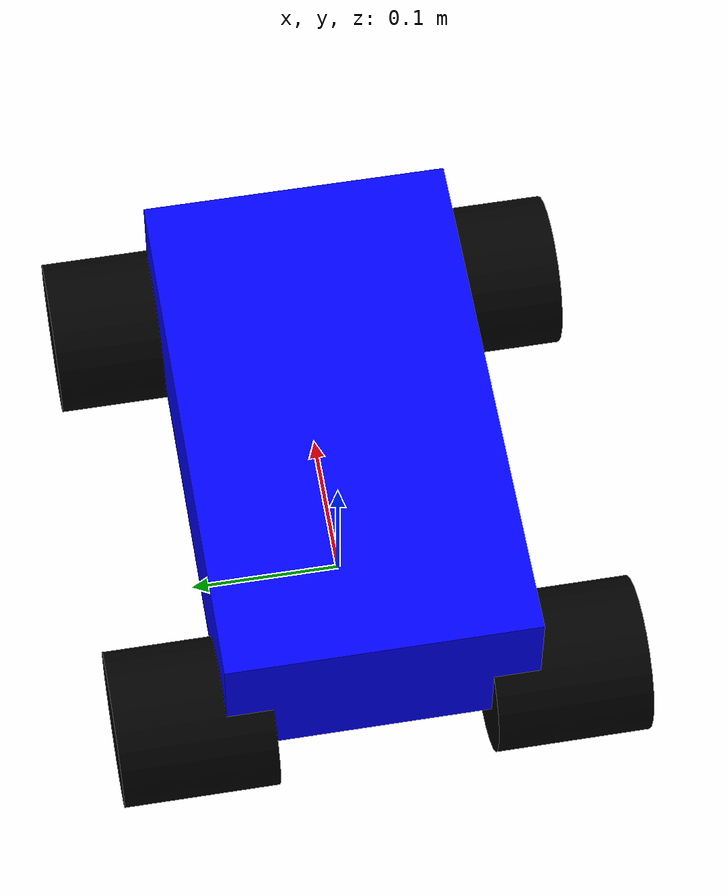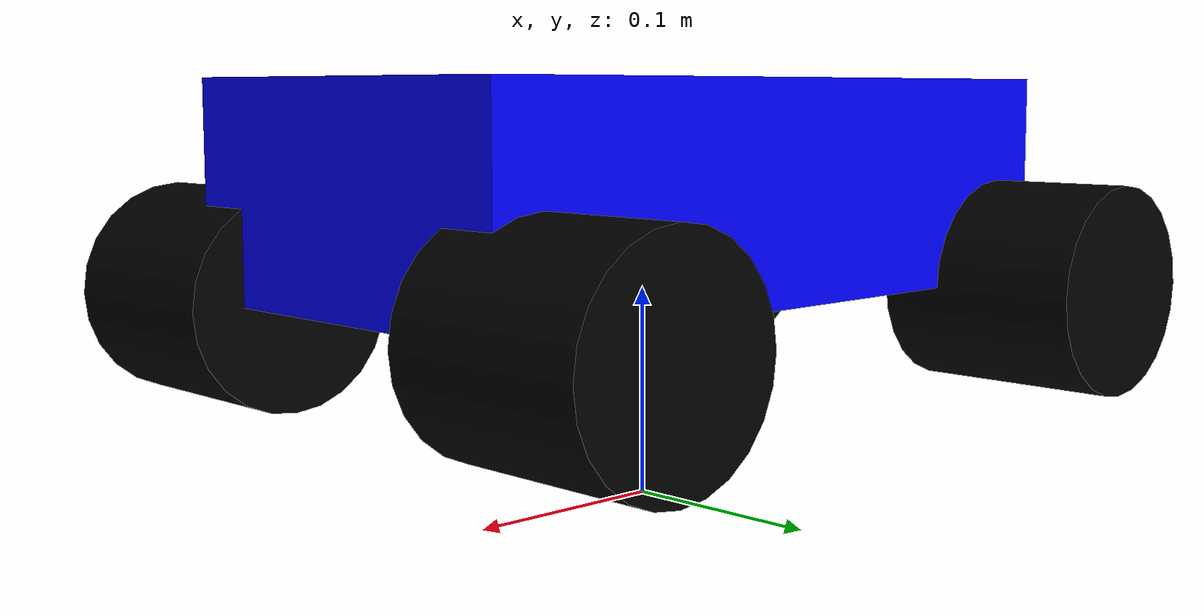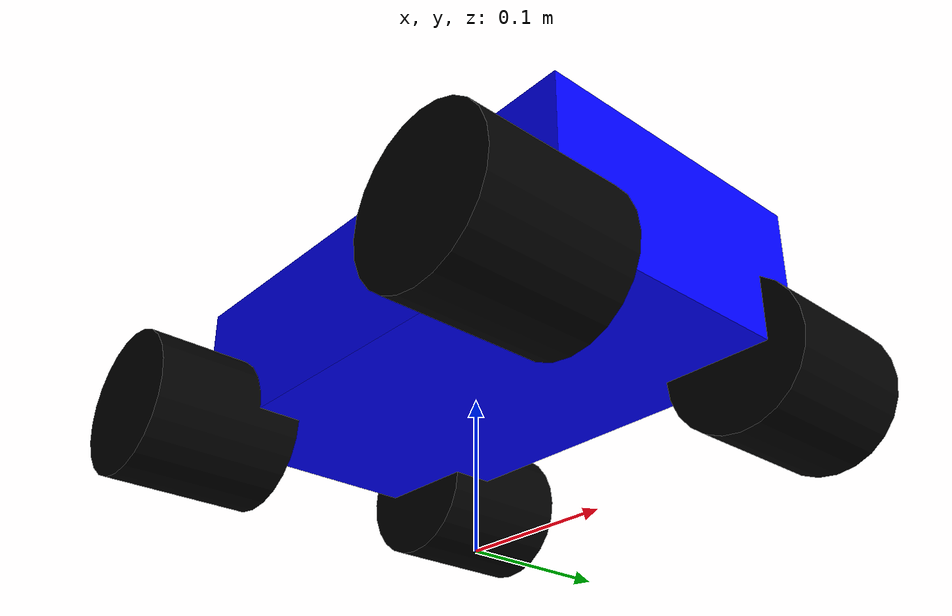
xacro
<?xml version="1.0"?>
<robot xmlns:xacro="http://www.ros.org/wiki/xacro" name="go2_mecanum">

  <!-- Properties -->
  <xacro:property name="base_mass" value="15.0" />
  <xacro:property name="wheel_mass" value="1.0" />
  <xacro:property name="wheel_radius" value="0.05" />
  <xacro:property name="wheel_length" value="0.1" />

  <!-- Base link -->
  <link name="base_link">
    <inertial>
      <mass value="${base_mass}"/>
      <origin xyz="0 0 0" rpy="0 0 0"/>
      <inertia ixx="0.1" ixy="0.0" ixz="0.0" iyy="0.1" iyz="0.0" izz="0.1"/>
    </inertial>
    <visual>
      <origin xyz="0 0 0.15" rpy="0 0 0"/>
      <geometry><box size="0.35 0.20 0.10"/></geometry>
      <material name="blue"><color rgba="0.0 0.0 1.0 1.0"/></material>
    </visual>
    <collision>
      <origin xyz="0 0 0.15" rpy="0 0 0"/>
      <geometry><box size="0.35 0.20 0.10"/></geometry>
    </collision>
  </link>

  <!-- Mecanum Wheel Macro -->
  <xacro:macro name="mecanum_wheel" params="prefix parent x y z">
    <link name="${prefix}_wheel">
      <inertial>
        <mass value="${wheel_mass}"/>
        <origin xyz="0 0 0" rpy="0 0 0"/>
        <inertia ixx="0.01" ixy="0.0" ixz="0.0" iyy="0.01" iyz="0.0" izz="0.01"/>
      </inertial>
      <visual>
        <origin xyz="0 0 0" rpy="1.57 0 0"/>
        <geometry><cylinder length="${wheel_length}" radius="${wheel_radius}"/></geometry>
        <material name="black"><color rgba="0.0 0.0 0.0 1.0"/></material>
      </visual>
      <collision>
        <origin xyz="0 0 0" rpy="1.57 0 0"/>
        <geometry><cylinder length="${wheel_length}" radius="${wheel_radius}"/></geometry>
      </collision>
    </link>

    <joint name="${prefix}_wheel_joint" type="continuous">
      <parent link="${parent}"/>
      <child link="${prefix}_wheel"/>
      <origin xyz="${x} ${y} ${z}" rpy="0 0 0"/>
      <axis xyz="0 1 0"/>
    </joint>
  </xacro:macro>

  <!-- Instantiate wheels -->
  <xacro:mecanum_wheel prefix="front_left" parent="base_link" x="0.15" y="0.12" z="0.1" />
  <xacro:mecanum_wheel prefix="front_right" parent="base_link" x="0.15" y="-0.12" z="0.1" />
  <xacro:mecanum_wheel prefix="back_left" parent="base_link" x="-0.15" y="0.12" z="0.1" />
  <xacro:mecanum_wheel prefix="back_right" parent="base_link" x="-0.15" y="-0.12" z="0.1" />

  <!-- Gazebo diff_drive plugin -->
  <gazebo>
    <plugin filename="libgazebo_ros_diff_drive.so" name="gazebo_ros_diff_drive">
      <update_rate>50</update_rate>
      <left_joint>front_left_wheel_joint</left_joint>
      <left_joint>back_left_wheel_joint</left_joint>
      <right_joint>front_right_wheel_joint</right_joint>
      <right_joint>back_right_wheel_joint</right_joint>
      <wheel_separation>0.24</wheel_separation>
      <wheel_diameter>0.10</wheel_diameter>
      <max_wheel_torque>20</max_wheel_torque>
      <command_topic>/cmd_vel</command_topic>
      <odometry_topic>/odom</odometry_topic>
      <odometry_frame>odom</odometry_frame>
      <robot_base_frame>base_link</robot_base_frame>
      <publish_odom>true</publish_odom>
      <publish_odom_tf>true</publish_odom_tf>
      <publish_wheel_tf>true</publish_wheel_tf>
    </plugin>
  </gazebo>

</robot>
